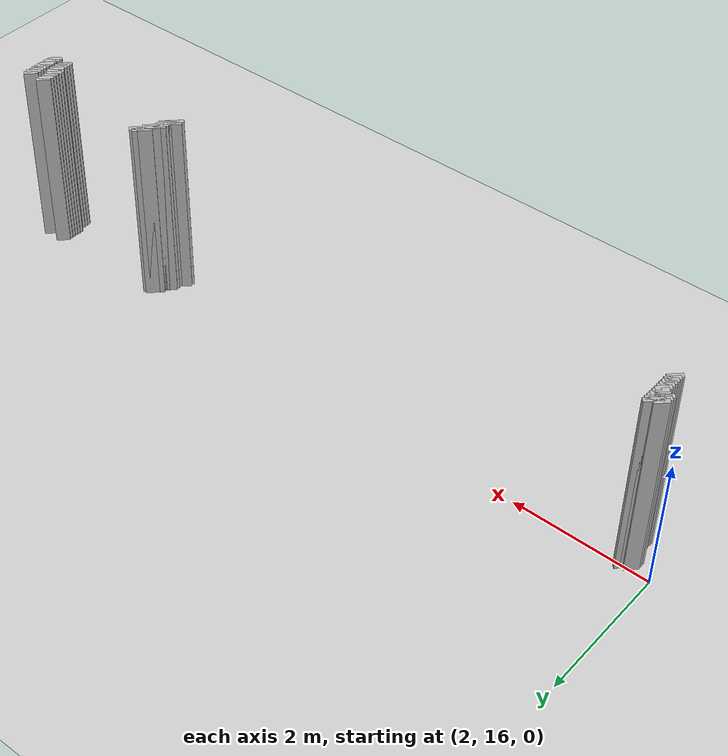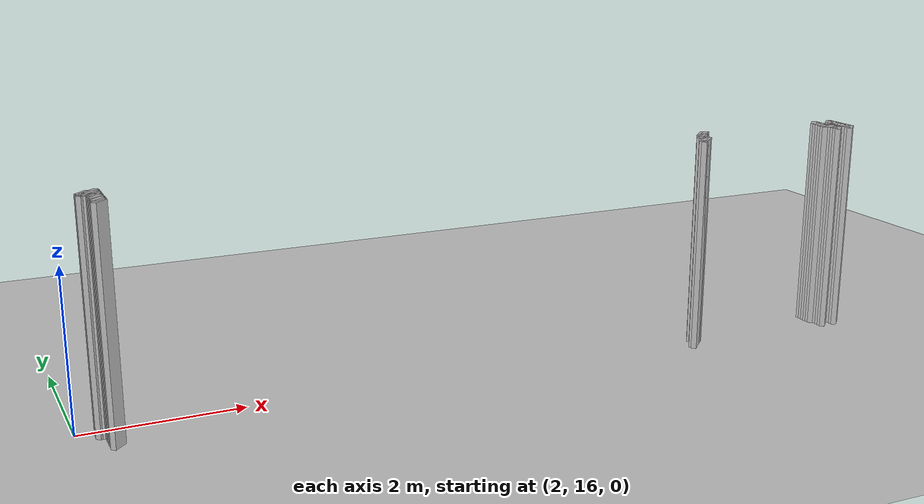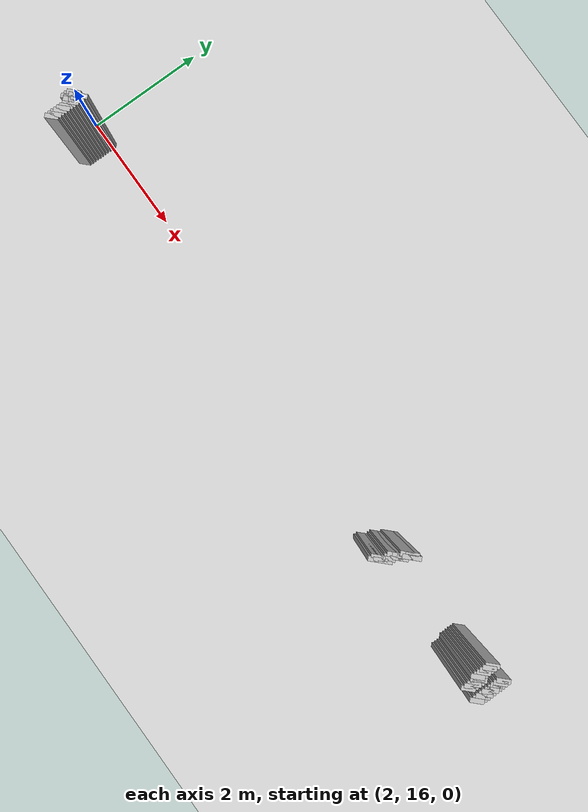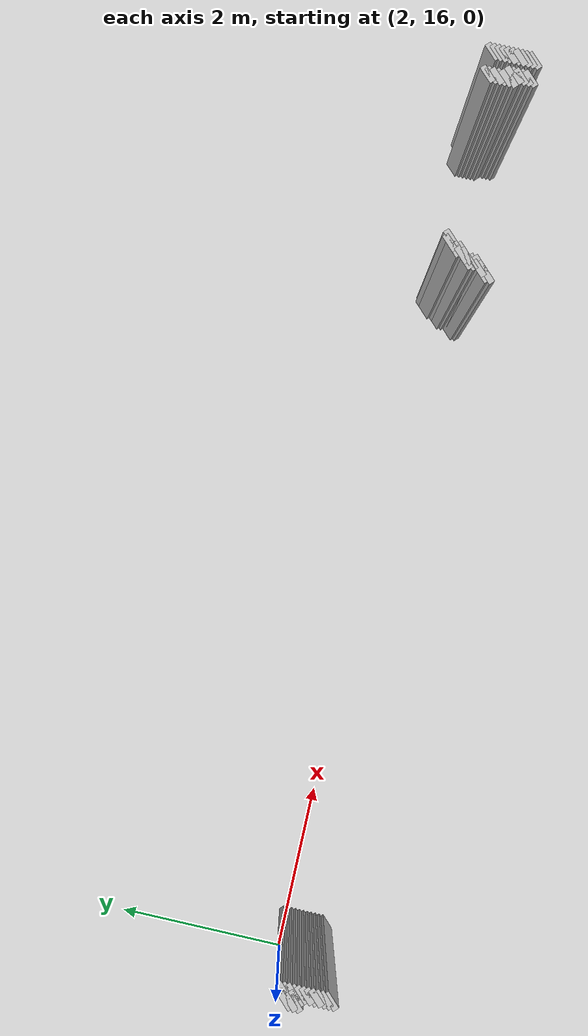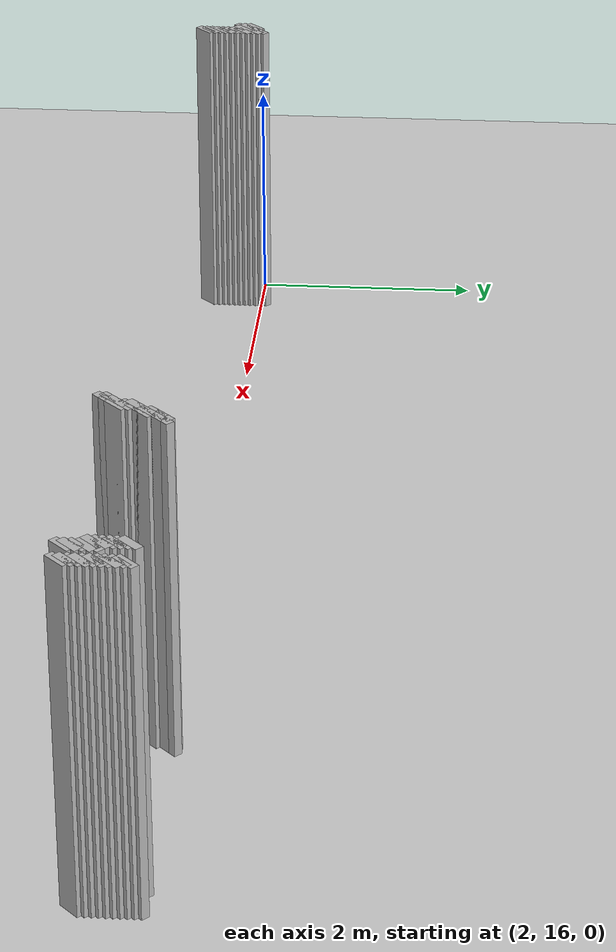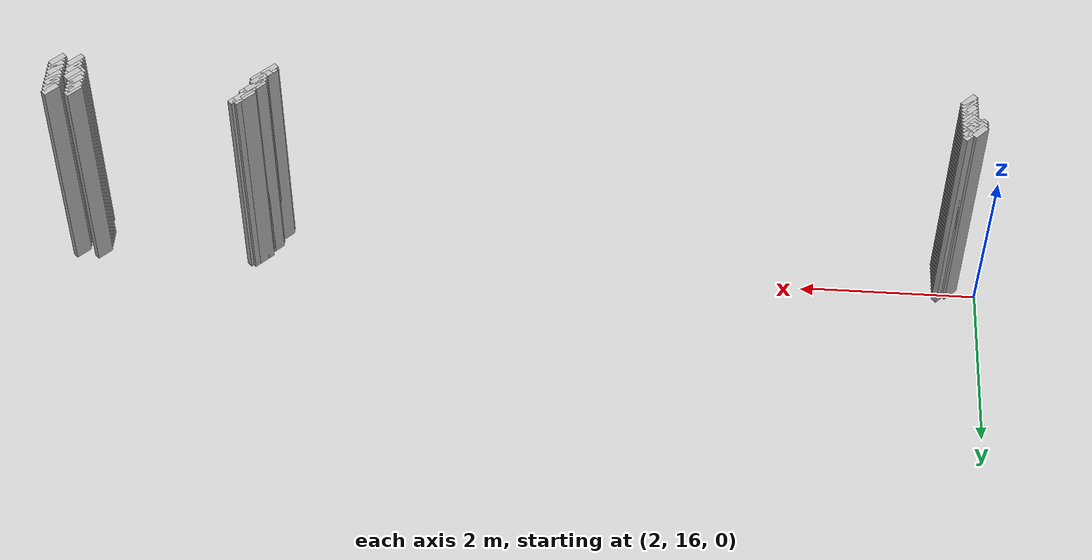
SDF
<sdf version="1.5">
 <world name="default">
  <include><uri>model://ground_plane</uri></include>
  <include><uri>model://sun</uri></include>
  <model name="grey_wall_372">
   <static>1</static>
   <link name="link">
    <pose>2.4000000000000004 16.0  1.4 0 0 -0.7853981633974394</pose>
    <collision name="collision">
     <geometry><box><size>0.07071067811865388 .2  2.8</size></box></geometry>
    </collision>
    <visual name="visual">
     <cast_shadows>0</cast_shadows>
     <geometry><box><size>0.07071067811865388 .2  2.8</size></box></geometry>
    </visual>
   </link>
  </model>
  <model name="grey_wall_373">
   <static>1</static>
   <link name="link">
    <pose>10.3 16.0  1.4 0 0 -0.7853981633974305</pose>
    <collision name="collision">
     <geometry><box><size>0.0707106781186545 .2  2.8</size></box></geometry>
    </collision>
    <visual name="visual">
     <cast_shadows>0</cast_shadows>
     <geometry><box><size>0.0707106781186545 .2  2.8</size></box></geometry>
    </visual>
   </link>
  </model>
  <model name="grey_wall_374">
   <static>1</static>
   <link name="link">
    <pose>10.350000000000001 16.0  1.4 0 0 -0.7853981633974305</pose>
    <collision name="collision">
     <geometry><box><size>0.0707106781186545 .2  2.8</size></box></geometry>
    </collision>
    <visual name="visual">
     <cast_shadows>0</cast_shadows>
     <geometry><box><size>0.0707106781186545 .2  2.8</size></box></geometry>
    </visual>
   </link>
  </model>
  <model name="grey_wall_375">
   <static>1</static>
   <link name="link">
    <pose>12.15 16.0  1.4 0 0 -0.7853981633974305</pose>
    <collision name="collision">
     <geometry><box><size>0.0707106781186545 .2  2.8</size></box></geometry>
    </collision>
    <visual name="visual">
     <cast_shadows>0</cast_shadows>
     <geometry><box><size>0.0707106781186545 .2  2.8</size></box></geometry>
    </visual>
   </link>
  </model>
  <model name="grey_wall_376">
   <static>1</static>
   <link name="link">
    <pose>12.4 16.0  1.4 0 0 -0.7853981633974305</pose>
    <collision name="collision">
     <geometry><box><size>0.0707106781186545 .2  2.8</size></box></geometry>
    </collision>
    <visual name="visual">
     <cast_shadows>0</cast_shadows>
     <geometry><box><size>0.0707106781186545 .2  2.8</size></box></geometry>
    </visual>
   </link>
  </model>
  <model name="grey_wall_377">
   <static>1</static>
   <link name="link">
    <pose>2.3000000000000003 15.950000000000001  1.4 0 0 -0.7853981633974572</pose>
    <collision name="collision">
     <geometry><box><size>0.07071067811865513 .2  2.8</size></box></geometry>
    </collision>
    <visual name="visual">
     <cast_shadows>0</cast_shadows>
     <geometry><box><size>0.07071067811865513 .2  2.8</size></box></geometry>
    </visual>
   </link>
  </model>
  <model name="grey_wall_378">
   <static>1</static>
   <link name="link">
    <pose>2.35 15.950000000000001  1.4 0 0 -0.7853981633974572</pose>
    <collision name="collision">
     <geometry><box><size>0.07071067811865513 .2  2.8</size></box></geometry>
    </collision>
    <visual name="visual">
     <cast_shadows>0</cast_shadows>
     <geometry><box><size>0.07071067811865513 .2  2.8</size></box></geometry>
    </visual>
   </link>
  </model>
  <model name="grey_wall_379">
   <static>1</static>
   <link name="link">
    <pose>2.4000000000000004 15.950000000000001  1.4 0 0 -0.7853981633974572</pose>
    <collision name="collision">
     <geometry><box><size>0.07071067811865513 .2  2.8</size></box></geometry>
    </collision>
    <visual name="visual">
     <cast_shadows>0</cast_shadows>
     <geometry><box><size>0.07071067811865513 .2  2.8</size></box></geometry>
    </visual>
   </link>
  </model>
  <model name="grey_wall_380">
   <static>1</static>
   <link name="link">
    <pose>10.25 15.950000000000001  1.4 0 0 -0.7853981633974483</pose>
    <collision name="collision">
     <geometry><box><size>0.07071067811865576 .2  2.8</size></box></geometry>
    </collision>
    <visual name="visual">
     <cast_shadows>0</cast_shadows>
     <geometry><box><size>0.07071067811865576 .2  2.8</size></box></geometry>
    </visual>
   </link>
  </model>
  <model name="grey_wall_381">
   <static>1</static>
   <link name="link">
    <pose>10.3 15.950000000000001  1.4 0 0 -0.7853981633974483</pose>
    <collision name="collision">
     <geometry><box><size>0.07071067811865576 .2  2.8</size></box></geometry>
    </collision>
    <visual name="visual">
     <cast_shadows>0</cast_shadows>
     <geometry><box><size>0.07071067811865576 .2  2.8</size></box></geometry>
    </visual>
   </link>
  </model>
  <model name="grey_wall_382">
   <static>1</static>
   <link name="link">
    <pose>12.15 15.950000000000001  1.4 0 0 -0.7853981633974483</pose>
    <collision name="collision">
     <geometry><box><size>0.07071067811865576 .2  2.8</size></box></geometry>
    </collision>
    <visual name="visual">
     <cast_shadows>0</cast_shadows>
     <geometry><box><size>0.07071067811865576 .2  2.8</size></box></geometry>
    </visual>
   </link>
  </model>
  <model name="grey_wall_383">
   <static>1</static>
   <link name="link">
    <pose>12.4 15.950000000000001  1.4 0 0 -0.7853981633974483</pose>
    <collision name="collision">
     <geometry><box><size>0.07071067811865576 .2  2.8</size></box></geometry>
    </collision>
    <visual name="visual">
     <cast_shadows>0</cast_shadows>
     <geometry><box><size>0.07071067811865576 .2  2.8</size></box></geometry>
    </visual>
   </link>
  </model>
  <model name="grey_wall_384">
   <static>1</static>
   <link name="link">
    <pose>2.3000000000000003 15.9  1.4 0 0 -0.7853981633974572</pose>
    <collision name="collision">
     <geometry><box><size>0.07071067811865513 .2  2.8</size></box></geometry>
    </collision>
    <visual name="visual">
     <cast_shadows>0</cast_shadows>
     <geometry><box><size>0.07071067811865513 .2  2.8</size></box></geometry>
    </visual>
   </link>
  </model>
  <model name="grey_wall_385">
   <static>1</static>
   <link name="link">
    <pose>2.4000000000000004 15.9  1.4 0 0 -0.7853981633974572</pose>
    <collision name="collision">
     <geometry><box><size>0.07071067811865513 .2  2.8</size></box></geometry>
    </collision>
    <visual name="visual">
     <cast_shadows>0</cast_shadows>
     <geometry><box><size>0.07071067811865513 .2  2.8</size></box></geometry>
    </visual>
   </link>
  </model>
  <model name="grey_wall_386">
   <static>1</static>
   <link name="link">
    <pose>10.25 15.9  1.4 0 0 -0.7853981633974483</pose>
    <collision name="collision">
     <geometry><box><size>0.07071067811865576 .2  2.8</size></box></geometry>
    </collision>
    <visual name="visual">
     <cast_shadows>0</cast_shadows>
     <geometry><box><size>0.07071067811865576 .2  2.8</size></box></geometry>
    </visual>
   </link>
  </model>
  <model name="grey_wall_387">
   <static>1</static>
   <link name="link">
    <pose>12.15 15.9  1.4 0 0 -0.7853981633974483</pose>
    <collision name="collision">
     <geometry><box><size>0.07071067811865576 .2  2.8</size></box></geometry>
    </collision>
    <visual name="visual">
     <cast_shadows>0</cast_shadows>
     <geometry><box><size>0.07071067811865576 .2  2.8</size></box></geometry>
    </visual>
   </link>
  </model>
  <model name="grey_wall_388">
   <static>1</static>
   <link name="link">
    <pose>12.4 15.9  1.4 0 0 -0.7853981633974483</pose>
    <collision name="collision">
     <geometry><box><size>0.07071067811865576 .2  2.8</size></box></geometry>
    </collision>
    <visual name="visual">
     <cast_shadows>0</cast_shadows>
     <geometry><box><size>0.07071067811865576 .2  2.8</size></box></geometry>
    </visual>
   </link>
  </model>
  <model name="grey_wall_389">
   <static>1</static>
   <link name="link">
    <pose>2.3000000000000003 15.850000000000001  1.4 0 0 -0.7853981633974572</pose>
    <collision name="collision">
     <geometry><box><size>0.07071067811865513 .2  2.8</size></box></geometry>
    </collision>
    <visual name="visual">
     <cast_shadows>0</cast_shadows>
     <geometry><box><size>0.07071067811865513 .2  2.8</size></box></geometry>
    </visual>
   </link>
  </model>
  <model name="grey_wall_390">
   <static>1</static>
   <link name="link">
    <pose>2.35 15.850000000000001  1.4 0 0 -0.7853981633974572</pose>
    <collision name="collision">
     <geometry><box><size>0.07071067811865513 .2  2.8</size></box></geometry>
    </collision>
    <visual name="visual">
     <cast_shadows>0</cast_shadows>
     <geometry><box><size>0.07071067811865513 .2  2.8</size></box></geometry>
    </visual>
   </link>
  </model>
  <model name="grey_wall_391">
   <static>1</static>
   <link name="link">
    <pose>2.4000000000000004 15.850000000000001  1.4 0 0 -0.7853981633974572</pose>
    <collision name="collision">
     <geometry><box><size>0.07071067811865513 .2  2.8</size></box></geometry>
    </collision>
    <visual name="visual">
     <cast_shadows>0</cast_shadows>
     <geometry><box><size>0.07071067811865513 .2  2.8</size></box></geometry>
    </visual>
   </link>
  </model>
  <model name="grey_wall_392">
   <static>1</static>
   <link name="link">
    <pose>10.200000000000001 15.850000000000001  1.4 0 0 -0.7853981633974483</pose>
    <collision name="collision">
     <geometry><box><size>0.07071067811865576 .2  2.8</size></box></geometry>
    </collision>
    <visual name="visual">
     <cast_shadows>0</cast_shadows>
     <geometry><box><size>0.07071067811865576 .2  2.8</size></box></geometry>
    </visual>
   </link>
  </model>
  <model name="grey_wall_393">
   <static>1</static>
   <link name="link">
    <pose>10.25 15.850000000000001  1.4 0 0 -0.7853981633974483</pose>
    <collision name="collision">
     <geometry><box><size>0.07071067811865576 .2  2.8</size></box></geometry>
    </collision>
    <visual name="visual">
     <cast_shadows>0</cast_shadows>
     <geometry><box><size>0.07071067811865576 .2  2.8</size></box></geometry>
    </visual>
   </link>
  </model>
  <model name="grey_wall_394">
   <static>1</static>
   <link name="link">
    <pose>12.15 15.850000000000001  1.4 0 0 -0.7853981633974483</pose>
    <collision name="collision">
     <geometry><box><size>0.07071067811865576 .2  2.8</size></box></geometry>
    </collision>
    <visual name="visual">
     <cast_shadows>0</cast_shadows>
     <geometry><box><size>0.07071067811865576 .2  2.8</size></box></geometry>
    </visual>
   </link>
  </model>
  <model name="grey_wall_395">
   <static>1</static>
   <link name="link">
    <pose>12.4 15.850000000000001  1.4 0 0 -0.7853981633974483</pose>
    <collision name="collision">
     <geometry><box><size>0.07071067811865576 .2  2.8</size></box></geometry>
    </collision>
    <visual name="visual">
     <cast_shadows>0</cast_shadows>
     <geometry><box><size>0.07071067811865576 .2  2.8</size></box></geometry>
    </visual>
   </link>
  </model>
  <model name="grey_wall_396">
   <static>1</static>
   <link name="link">
    <pose>2.4000000000000004 15.8  1.4 0 0 -0.7853981633974572</pose>
    <collision name="collision">
     <geometry><box><size>0.07071067811865513 .2  2.8</size></box></geometry>
    </collision>
    <visual name="visual">
     <cast_shadows>0</cast_shadows>
     <geometry><box><size>0.07071067811865513 .2  2.8</size></box></geometry>
    </visual>
   </link>
  </model>
  <model name="grey_wall_397">
   <static>1</static>
   <link name="link">
    <pose>10.15 15.8  1.4 0 0 -0.7853981633974483</pose>
    <collision name="collision">
     <geometry><box><size>0.07071067811865576 .2  2.8</size></box></geometry>
    </collision>
    <visual name="visual">
     <cast_shadows>0</cast_shadows>
     <geometry><box><size>0.07071067811865576 .2  2.8</size></box></geometry>
    </visual>
   </link>
  </model>
  <model name="grey_wall_398">
   <static>1</static>
   <link name="link">
    <pose>10.200000000000001 15.8  1.4 0 0 -0.7853981633974483</pose>
    <collision name="collision">
     <geometry><box><size>0.07071067811865576 .2  2.8</size></box></geometry>
    </collision>
    <visual name="visual">
     <cast_shadows>0</cast_shadows>
     <geometry><box><size>0.07071067811865576 .2  2.8</size></box></geometry>
    </visual>
   </link>
  </model>
  <model name="grey_wall_399">
   <static>1</static>
   <link name="link">
    <pose>12.15 15.8  1.4 0 0 -0.7853981633974483</pose>
    <collision name="collision">
     <geometry><box><size>0.07071067811865576 .2  2.8</size></box></geometry>
    </collision>
    <visual name="visual">
     <cast_shadows>0</cast_shadows>
     <geometry><box><size>0.07071067811865576 .2  2.8</size></box></geometry>
    </visual>
   </link>
  </model>
  <model name="grey_wall_400">
   <static>1</static>
   <link name="link">
    <pose>12.4 15.8  1.4 0 0 -0.7853981633974483</pose>
    <collision name="collision">
     <geometry><box><size>0.07071067811865576 .2  2.8</size></box></geometry>
    </collision>
    <visual name="visual">
     <cast_shadows>0</cast_shadows>
     <geometry><box><size>0.07071067811865576 .2  2.8</size></box></geometry>
    </visual>
   </link>
  </model>
  <model name="grey_wall_401">
   <static>1</static>
   <link name="link">
    <pose>2.4000000000000004 15.75  1.4 0 0 -0.7853981633974572</pose>
    <collision name="collision">
     <geometry><box><size>0.07071067811865513 .2  2.8</size></box></geometry>
    </collision>
    <visual name="visual">
     <cast_shadows>0</cast_shadows>
     <geometry><box><size>0.07071067811865513 .2  2.8</size></box></geometry>
    </visual>
   </link>
  </model>
  <model name="grey_wall_402">
   <static>1</static>
   <link name="link">
    <pose>10.15 15.75  1.4 0 0 -0.7853981633974483</pose>
    <collision name="collision">
     <geometry><box><size>0.07071067811865576 .2  2.8</size></box></geometry>
    </collision>
    <visual name="visual">
     <cast_shadows>0</cast_shadows>
     <geometry><box><size>0.07071067811865576 .2  2.8</size></box></geometry>
    </visual>
   </link>
  </model>
  <model name="grey_wall_403">
   <static>1</static>
   <link name="link">
    <pose>12.15 15.75  1.4 0 0 -0.7853981633974483</pose>
    <collision name="collision">
     <geometry><box><size>0.07071067811865576 .2  2.8</size></box></geometry>
    </collision>
    <visual name="visual">
     <cast_shadows>0</cast_shadows>
     <geometry><box><size>0.07071067811865576 .2  2.8</size></box></geometry>
    </visual>
   </link>
  </model>
  <model name="grey_wall_404">
   <static>1</static>
   <link name="link">
    <pose>12.200000000000001 15.75  1.4 0 0 -0.7853981633974483</pose>
    <collision name="collision">
     <geometry><box><size>0.07071067811865576 .2  2.8</size></box></geometry>
    </collision>
    <visual name="visual">
     <cast_shadows>0</cast_shadows>
     <geometry><box><size>0.07071067811865576 .2  2.8</size></box></geometry>
    </visual>
   </link>
  </model>
  <model name="grey_wall_405">
   <static>1</static>
   <link name="link">
    <pose>12.4 15.75  1.4 0 0 -0.7853981633974483</pose>
    <collision name="collision">
     <geometry><box><size>0.07071067811865576 .2  2.8</size></box></geometry>
    </collision>
    <visual name="visual">
     <cast_shadows>0</cast_shadows>
     <geometry><box><size>0.07071067811865576 .2  2.8</size></box></geometry>
    </visual>
   </link>
  </model>
  <model name="grey_wall_406">
   <static>1</static>
   <link name="link">
    <pose>2.4000000000000004 15.700000000000001  1.4 0 0 -0.7853981633974572</pose>
    <collision name="collision">
     <geometry><box><size>0.07071067811865513 .2  2.8</size></box></geometry>
    </collision>
    <visual name="visual">
     <cast_shadows>0</cast_shadows>
     <geometry><box><size>0.07071067811865513 .2  2.8</size></box></geometry>
    </visual>
   </link>
  </model>
  <model name="grey_wall_407">
   <static>1</static>
   <link name="link">
    <pose>10.15 15.700000000000001  1.4 0 0 -0.7853981633974483</pose>
    <collision name="collision">
     <geometry><box><size>0.07071067811865576 .2  2.8</size></box></geometry>
    </collision>
    <visual name="visual">
     <cast_shadows>0</cast_shadows>
     <geometry><box><size>0.07071067811865576 .2  2.8</size></box></geometry>
    </visual>
   </link>
  </model>
  <model name="grey_wall_408">
   <static>1</static>
   <link name="link">
    <pose>12.200000000000001 15.700000000000001  1.4 0 0 -0.7853981633974483</pose>
    <collision name="collision">
     <geometry><box><size>0.07071067811865576 .2  2.8</size></box></geometry>
    </collision>
    <visual name="visual">
     <cast_shadows>0</cast_shadows>
     <geometry><box><size>0.07071067811865576 .2  2.8</size></box></geometry>
    </visual>
   </link>
  </model>
  <model name="grey_wall_409">
   <static>1</static>
   <link name="link">
    <pose>12.4 15.700000000000001  1.4 0 0 -0.7853981633974483</pose>
    <collision name="collision">
     <geometry><box><size>0.07071067811865576 .2  2.8</size></box></geometry>
    </collision>
    <visual name="visual">
     <cast_shadows>0</cast_shadows>
     <geometry><box><size>0.07071067811865576 .2  2.8</size></box></geometry>
    </visual>
   </link>
  </model>
  <model name="grey_wall_410">
   <static>1</static>
   <link name="link">
    <pose>2.4000000000000004 15.65  1.4 0 0 -0.7853981633974572</pose>
    <collision name="collision">
     <geometry><box><size>0.07071067811865513 .2  2.8</size></box></geometry>
    </collision>
    <visual name="visual">
     <cast_shadows>0</cast_shadows>
     <geometry><box><size>0.07071067811865513 .2  2.8</size></box></geometry>
    </visual>
   </link>
  </model>
  <model name="grey_wall_411">
   <static>1</static>
   <link name="link">
    <pose>10.100000000000001 15.65  1.4 0 0 -0.7853981633974483</pose>
    <collision name="collision">
     <geometry><box><size>0.07071067811865576 .2  2.8</size></box></geometry>
    </collision>
    <visual name="visual">
     <cast_shadows>0</cast_shadows>
     <geometry><box><size>0.07071067811865576 .2  2.8</size></box></geometry>
    </visual>
   </link>
  </model>
  <model name="grey_wall_412">
   <static>1</static>
   <link name="link">
    <pose>10.15 15.65  1.4 0 0 -0.7853981633974483</pose>
    <collision name="collision">
     <geometry><box><size>0.07071067811865576 .2  2.8</size></box></geometry>
    </collision>
    <visual name="visual">
     <cast_shadows>0</cast_shadows>
     <geometry><box><size>0.07071067811865576 .2  2.8</size></box></geometry>
    </visual>
   </link>
  </model>
  <model name="grey_wall_413">
   <static>1</static>
   <link name="link">
    <pose>12.200000000000001 15.65  1.4 0 0 -0.7853981633974483</pose>
    <collision name="collision">
     <geometry><box><size>0.07071067811865576 .2  2.8</size></box></geometry>
    </collision>
    <visual name="visual">
     <cast_shadows>0</cast_shadows>
     <geometry><box><size>0.07071067811865576 .2  2.8</size></box></geometry>
    </visual>
   </link>
  </model>
  <model name="grey_wall_414">
   <static>1</static>
   <link name="link">
    <pose>12.4 15.65  1.4 0 0 -0.7853981633974483</pose>
    <collision name="collision">
     <geometry><box><size>0.07071067811865576 .2  2.8</size></box></geometry>
    </collision>
    <visual name="visual">
     <cast_shadows>0</cast_shadows>
     <geometry><box><size>0.07071067811865576 .2  2.8</size></box></geometry>
    </visual>
   </link>
  </model>
  <model name="grey_wall_415">
   <static>1</static>
   <link name="link">
    <pose>2.4000000000000004 15.600000000000001  1.4 0 0 -0.7853981633974572</pose>
    <collision name="collision">
     <geometry><box><size>0.07071067811865513 .2  2.8</size></box></geometry>
    </collision>
    <visual name="visual">
     <cast_shadows>0</cast_shadows>
     <geometry><box><size>0.07071067811865513 .2  2.8</size></box></geometry>
    </visual>
   </link>
  </model>
  <model name="grey_wall_416">
   <static>1</static>
   <link name="link">
    <pose>10.05 15.600000000000001  1.4 0 0 -0.7853981633974483</pose>
    <collision name="collision">
     <geometry><box><size>0.07071067811865576 .2  2.8</size></box></geometry>
    </collision>
    <visual name="visual">
     <cast_shadows>0</cast_shadows>
     <geometry><box><size>0.07071067811865576 .2  2.8</size></box></geometry>
    </visual>
   </link>
  </model>
  <model name="grey_wall_417">
   <static>1</static>
   <link name="link">
    <pose>10.100000000000001 15.600000000000001  1.4 0 0 -0.7853981633974483</pose>
    <collision name="collision">
     <geometry><box><size>0.07071067811865576 .2  2.8</size></box></geometry>
    </collision>
    <visual name="visual">
     <cast_shadows>0</cast_shadows>
     <geometry><box><size>0.07071067811865576 .2  2.8</size></box></geometry>
    </visual>
   </link>
  </model>
  <model name="grey_wall_418">
   <static>1</static>
   <link name="link">
    <pose>12.200000000000001 15.600000000000001  1.4 0 0 -0.7853981633974483</pose>
    <collision name="collision">
     <geometry><box><size>0.07071067811865576 .2  2.8</size></box></geometry>
    </collision>
    <visual name="visual">
     <cast_shadows>0</cast_shadows>
     <geometry><box><size>0.07071067811865576 .2  2.8</size></box></geometry>
    </visual>
   </link>
  </model>
  <model name="grey_wall_419">
   <static>1</static>
   <link name="link">
    <pose>12.4 15.600000000000001  1.4 0 0 -0.7853981633974483</pose>
    <collision name="collision">
     <geometry><box><size>0.07071067811865576 .2  2.8</size></box></geometry>
    </collision>
    <visual name="visual">
     <cast_shadows>0</cast_shadows>
     <geometry><box><size>0.07071067811865576 .2  2.8</size></box></geometry>
    </visual>
   </link>
  </model>
  <model name="grey_wall_420">
   <static>1</static>
   <link name="link">
    <pose>2.4000000000000004 15.55  1.4 0 0 -0.7853981633974572</pose>
    <collision name="collision">
     <geometry><box><size>0.07071067811865513 .2  2.8</size></box></geometry>
    </collision>
    <visual name="visual">
     <cast_shadows>0</cast_shadows>
     <geometry><box><size>0.07071067811865513 .2  2.8</size></box></geometry>
    </visual>
   </link>
  </model>
  <model name="grey_wall_421">
   <static>1</static>
   <link name="link">
    <pose>10.05 15.55  1.4 0 0 -0.7853981633974483</pose>
    <collision name="collision">
     <geometry><box><size>0.07071067811865576 .2  2.8</size></box></geometry>
    </collision>
    <visual name="visual">
     <cast_shadows>0</cast_shadows>
     <geometry><box><size>0.07071067811865576 .2  2.8</size></box></geometry>
    </visual>
   </link>
  </model>
  <model name="grey_wall_422">
   <static>1</static>
   <link name="link">
    <pose>12.200000000000001 15.55  1.4 0 0 -0.7853981633974483</pose>
    <collision name="collision">
     <geometry><box><size>0.07071067811865576 .2  2.8</size></box></geometry>
    </collision>
    <visual name="visual">
     <cast_shadows>0</cast_shadows>
     <geometry><box><size>0.07071067811865576 .2  2.8</size></box></geometry>
    </visual>
   </link>
  </model>
  <model name="grey_wall_423">
   <static>1</static>
   <link name="link">
    <pose>12.4 15.55  1.4 0 0 -0.7853981633974483</pose>
    <collision name="collision">
     <geometry><box><size>0.07071067811865576 .2  2.8</size></box></geometry>
    </collision>
    <visual name="visual">
     <cast_shadows>0</cast_shadows>
     <geometry><box><size>0.07071067811865576 .2  2.8</size></box></geometry>
    </visual>
   </link>
  </model>
  <model name="grey_wall_424">
   <static>1</static>
   <link name="link">
    <pose>2.4000000000000004 15.5  1.4 0 0 -0.7853981633974572</pose>
    <collision name="collision">
     <geometry><box><size>0.07071067811865513 .2  2.8</size></box></geometry>
    </collision>
    <visual name="visual">
     <cast_shadows>0</cast_shadows>
     <geometry><box><size>0.07071067811865513 .2  2.8</size></box></geometry>
    </visual>
   </link>
  </model>
 </world>
</sdf>
